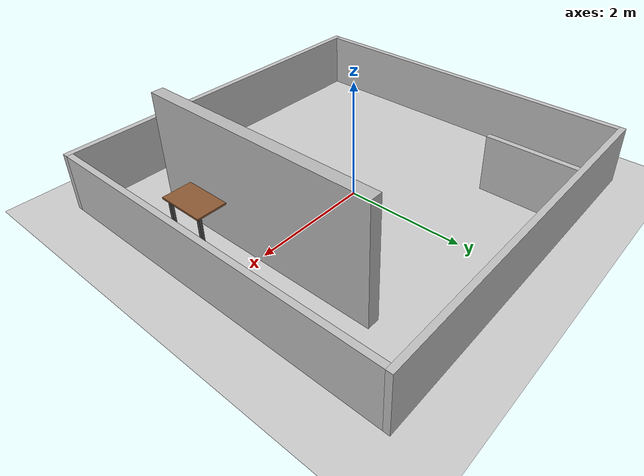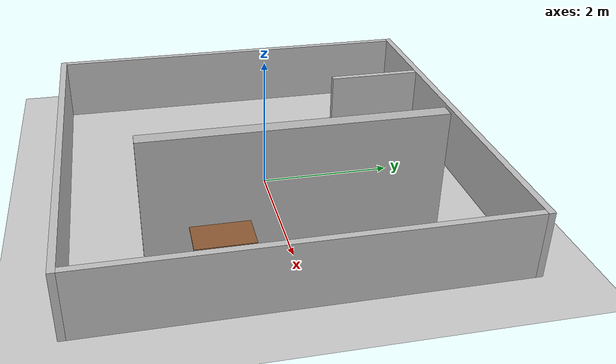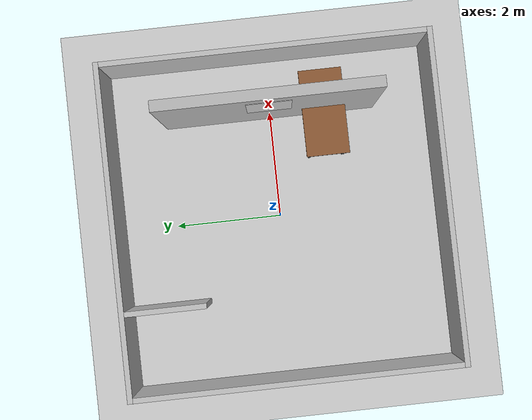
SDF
<sdf version="1.10">
 <world name="robocup_motion">
  <gravity>0 0 -9.81</gravity>
  <physics name="physics" type="ignored">
   <max_step_size>0.001</max_step_size>
   <real_time_factor>1</real_time_factor>
  </physics>
  <plugin filename="gz-sim-physics-system" name="gz::sim::systems::Physics"/>
  <plugin filename="gz-sim-user-commands-system" name="gz::sim::systems::UserCommands"/>
  <plugin filename="gz-sim-scene-broadcaster-system" name="gz::sim::systems::SceneBroadcaster"/>
  <plugin filename="gz-sim-sensors-system" name="gz::sim::systems::Sensors">
   <render_engine>ogre2</render_engine>
  </plugin>
  <model name="ground">
   <static>true</static>
   <link name="ground">
    <collision name="ground_collision">
     <geometry><plane><normal>0 0 1</normal><size>100 100</size></plane></geometry>
    </collision>
    <visual name="ground_visual">
     <geometry><plane><normal>0 0 1</normal><size>100 100</size></plane></geometry>
    </visual>
   </link>
  </model>
  <model name="sensor_test_wall">
   <static>true</static>
   <pose>2 0 1 0 0 0</pose>
   <link name="wall">
    <visual name="wall_visual"><geometry><box><size>0.2 4 2</size></box></geometry></visual>
    <collision name="wall_collision"><geometry><box><size>0.2 4 2</size></box></geometry></collision>
   </link>
  </model>
  <model name="wall_north">
   <static>true</static>
   <pose>0 3.05 0.5 0 0 0</pose>
   <link name="link">
    <visual name="visual">
     <geometry><box><size>6.2 0.1 1.0</size></box></geometry>
     <material><ambient>0.75 0.75 0.75 1</ambient><diffuse>0.75 0.75 0.75 1</diffuse></material>
    </visual>
    <collision name="collision"><geometry><box><size>6.2 0.1 1.0</size></box></geometry></collision>
   </link>
  </model>
  <model name="wall_south">
   <static>true</static>
   <pose>0 -3.05 0.5 0 0 0</pose>
   <link name="link">
    <visual name="visual">
     <geometry><box><size>6.2 0.1 1.0</size></box></geometry>
     <material><ambient>0.75 0.75 0.75 1</ambient><diffuse>0.75 0.75 0.75 1</diffuse></material>
    </visual>
    <collision name="collision"><geometry><box><size>6.2 0.1 1.0</size></box></geometry></collision>
   </link>
  </model>
  <model name="wall_east">
   <static>true</static>
   <pose>3.05 0 0.5 0 0 0</pose>
   <link name="link">
    <visual name="visual">
     <geometry><box><size>0.1 6.0 1.0</size></box></geometry>
     <material><ambient>0.75 0.75 0.75 1</ambient><diffuse>0.75 0.75 0.75 1</diffuse></material>
    </visual>
    <collision name="collision"><geometry><box><size>0.1 6.0 1.0</size></box></geometry></collision>
   </link>
  </model>
  <model name="wall_west">
   <static>true</static>
   <pose>-3.05 0 0.5 0 0 0</pose>
   <link name="link">
    <visual name="visual">
     <geometry><box><size>0.1 6.0 1.0</size></box></geometry>
     <material><ambient>0.75 0.75 0.75 1</ambient><diffuse>0.75 0.75 0.75 1</diffuse></material>
    </visual>
    <collision name="collision"><geometry><box><size>0.1 6.0 1.0</size></box></geometry></collision>
   </link>
  </model>
  <model name="wall_partition">
   <static>true</static>
   <pose>-1.5 2.25 0.5 0 0 0</pose>
   <link name="link">
    <visual name="visual">
     <geometry><box><size>0.1 1.5 1.0</size></box></geometry>
     <material><ambient>0.75 0.75 0.75 1</ambient><diffuse>0.75 0.75 0.75 1</diffuse></material>
    </visual>
    <collision name="collision"><geometry><box><size>0.1 1.5 1.0</size></box></geometry></collision>
   </link>
  </model>
  <model name="table_top">
   <static>true</static>
   <pose>1.8 -1.0 0.705 0 0 0</pose>
   <link name="link">
    <visual name="visual">
     <geometry><box><size>1.6 0.8 0.03</size></box></geometry>
     <material><ambient>0.55 0.35 0.2 1</ambient><diffuse>0.55 0.35 0.2 1</diffuse></material>
    </visual>
    <collision name="collision"><geometry><box><size>1.6 0.8 0.03</size></box></geometry></collision>
   </link>
  </model>
  <model name="table_leg0">
   <static>true</static>
   <pose>2.525 -0.675 0.345 0 0 0</pose>
   <link name="link">
    <visual name="visual">
     <geometry><box><size>0.05 0.05 0.69</size></box></geometry>
     <material><ambient>0.3 0.3 0.3 1</ambient><diffuse>0.3 0.3 0.3 1</diffuse></material>
    </visual>
    <collision name="collision"><geometry><box><size>0.05 0.05 0.69</size></box></geometry></collision>
   </link>
  </model>
  <model name="table_leg1">
   <static>true</static>
   <pose>2.525 -1.325 0.345 0 0 0</pose>
   <link name="link">
    <visual name="visual">
     <geometry><box><size>0.05 0.05 0.69</size></box></geometry>
     <material><ambient>0.3 0.3 0.3 1</ambient><diffuse>0.3 0.3 0.3 1</diffuse></material>
    </visual>
    <collision name="collision"><geometry><box><size>0.05 0.05 0.69</size></box></geometry></collision>
   </link>
  </model>
  <model name="table_leg2">
   <static>true</static>
   <pose>1.0750000000000002 -0.675 0.345 0 0 0</pose>
   <link name="link">
    <visual name="visual">
     <geometry><box><size>0.05 0.05 0.69</size></box></geometry>
     <material><ambient>0.3 0.3 0.3 1</ambient><diffuse>0.3 0.3 0.3 1</diffuse></material>
    </visual>
    <collision name="collision"><geometry><box><size>0.05 0.05 0.69</size></box></geometry></collision>
   </link>
  </model>
  <model name="table_leg3">
   <static>true</static>
   <pose>1.0750000000000002 -1.325 0.345 0 0 0</pose>
   <link name="link">
    <visual name="visual">
     <geometry><box><size>0.05 0.05 0.69</size></box></geometry>
     <material><ambient>0.3 0.3 0.3 1</ambient><diffuse>0.3 0.3 0.3 1</diffuse></material>
    </visual>
    <collision name="collision"><geometry><box><size>0.05 0.05 0.69</size></box></geometry></collision>
   </link>
  </model>
  <light name="sun" type="directional">
   <pose>0 0 5 0 0 0</pose>
   <direction>-0.5 -0.5 -1</direction>
   <diffuse>0.8 0.8 0.8 1</diffuse>
  </light>
  <scene><ambient>0.6 0.6 0.6 1</ambient></scene>
  <model name="calibration_board">
   <static>true</static>
   <pose>1.8750499999999999 -4.102097017621987e-10 1.431109999589793 1.570796326589793 0.0 -1.570796327</pose>
   <link name="board">
    <collision name="calibration_plate_collision_head-mid">
     <pose>0.0 0.0 -0.005 0.0 0.0 0.0</pose>
     <geometry><box><size>.8 .8 .01</size></box></geometry>
    </collision>
    <visual name="calibration_plate_visual_head-mid">
     <pose>0.0 0.0 -0.005 0.0 0.0 0.0</pose>
     <geometry><box><size>.8 .8 .01</size></box></geometry>
     <material><ambient>.8 .8 .8 1</ambient><diffuse>.8 .8 .8 1</diffuse></material>
    </visual>
    <visual name="calibration_apriltag_head-mid">
     <pose>0.0 0.0 0.0001 0.0 0.0 0.0</pose>
     <geometry><plane><normal>0 0 1</normal><size>.1 .1</size></plane></geometry>
     <material>
      <ambient>1 1 1 1</ambient>
      <diffuse>1 1 1 1</diffuse>
      <pbr>
       <metal>
        <albedo_map>/Users/seoneum/Documents/Codex/2026-10-03/wh/outputs/robocup-tutorial-calibration/cli/board/apriltag_36h11_id0.png</albedo_map>
        <metalness>0</metalness>
        <roughness>1</roughness>
       </metal>
      </pbr>
     </material>
    </visual>
   </link>
  </model>
 </world>
</sdf>
